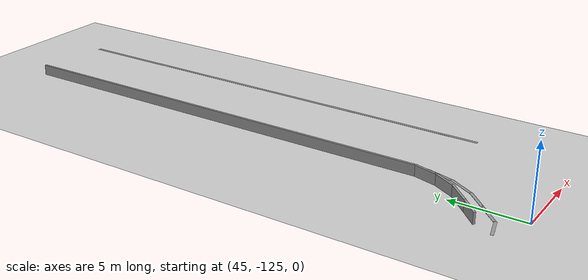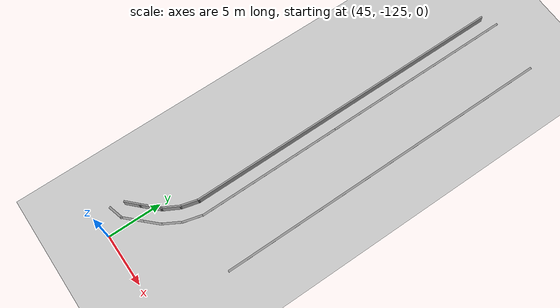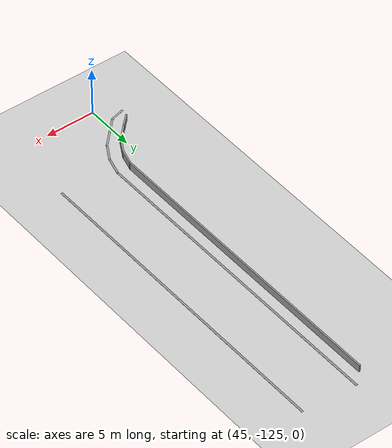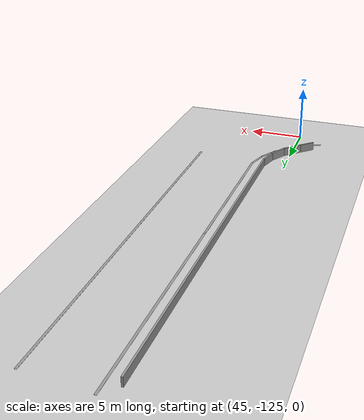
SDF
<sdf version="1.6">
 <world name="default">
  <model name="ground_plane">
   <static>1</static>
   <link name="link">
    <collision name="collision">
     <geometry><plane><normal>0 0 1</normal><size>100 100</size></plane></geometry>
     <surface>
      <contact><collide_bitmask>65535</collide_bitmask></contact>
      <friction><ode><mu>100</mu><mu2>50</mu2></ode></friction>
     </surface>
    </collision>
    <visual name="visual">
     <cast_shadows>0</cast_shadows>
     <geometry><plane><normal>0 0 1</normal><size>100 100</size></plane></geometry>
     <material>
      <script><uri>file://media/materials/scripts/gazebo.material</uri><name>Gazebo/Grey</name></script>
     </material>
    </visual>
   </link>
  </model>
  <model name="GercekDuvarSeritKoyu1">
   <link name="Wall_141">
    <pose>67.1621 -16.2216 0 0 -0 2.33523</pose>
    <inertial>
     <mass>1</mass>
     <inertia><ixx>1</ixx><ixy>0</ixy><ixz>0</ixz><iyy>1</iyy><iyz>0</iyz><izz>1</izz></inertia>
    </inertial>
    <visual name="Wall_141_Visual">
     <pose>0 0 0.375 0 -0 0</pose>
     <geometry><box><size>1.5 0.15 0.75</size></box></geometry>
     <material>
      <script><uri>file://media/materials/scripts/gazebo.material</uri><name>Gazebo/Grey</name></script>
      <ambient>0.5 0.5 0.5 1</ambient>
      <shader type="pixel"><normal_map>__default__</normal_map></shader>
      <diffuse>0.7 0.7 0.7 1</diffuse>
      <specular>0.01 0.01 0.01 1</specular>
      <emissive>0 0 0 1</emissive>
     </material>
     <meta><layer>0</layer></meta>
    </visual>
    <collision name="Wall_141_Collision">
     <pose>0 0 0.375 0 -0 0</pose>
     <geometry><box><size>1.5 0.15 0.75</size></box></geometry>
     <surface>
      <friction>
       <ode><mu>1</mu><mu2>1</mu2><fdir1>0 0 0</fdir1><slip1>0</slip1><slip2>0</slip2></ode>
       <torsional>
        <coefficient>1</coefficient>
        <patch_radius>0</patch_radius>
        <surface_radius>0</surface_radius>
        <use_patch_radius>1</use_patch_radius>
        <ode><slip>0</slip></ode>
       </torsional>
      </friction>
      <bounce><restitution_coefficient>0</restitution_coefficient><threshold>1e+06</threshold></bounce>
      <contact>
       <collide_without_contact>0</collide_without_contact>
       <collide_without_contact_bitmask>1</collide_without_contact_bitmask>
       <collide_bitmask>1</collide_bitmask>
       <ode>
        <soft_cfm>0</soft_cfm>
        <soft_erp>0.2</soft_erp>
        <kp>1e+13</kp>
        <kd>1</kd>
        <max_vel>0.01</max_vel>
        <min_depth>0</min_depth>
       </ode>
       <bullet>
        <split_impulse>1</split_impulse>
        <split_impulse_penetration_threshold>-0.01</split_impulse_penetration_threshold>
        <soft_cfm>0</soft_cfm>
        <soft_erp>0.2</soft_erp>
        <kp>1e+13</kp>
        <kd>1</kd>
       </bullet>
      </contact>
     </surface>
    </collision>
   </link>
   <link name="Wall_142">
    <pose>66.0411 -15.0806 0 0 -0 2.35619</pose>
    <inertial>
     <mass>1</mass>
     <inertia><ixx>1</ixx><ixy>0</ixy><ixz>0</ixz><iyy>1</iyy><iyz>0</iyz><izz>1</izz></inertia>
    </inertial>
    <visual name="Wall_142_Visual">
     <pose>0 0 0.375 0 -0 0</pose>
     <geometry><box><size>2 0.15 0.75</size></box></geometry>
     <material>
      <script><uri>file://media/materials/scripts/gazebo.material</uri><name>Gazebo/Grey</name></script>
      <ambient>0.5 0.5 0.5 1</ambient>
      <shader type="pixel"><normal_map>__default__</normal_map></shader>
      <diffuse>0.7 0.7 0.7 1</diffuse>
      <specular>0.01 0.01 0.01 1</specular>
      <emissive>0 0 0 1</emissive>
     </material>
     <meta><layer>0</layer></meta>
    </visual>
    <collision name="Wall_142_Collision">
     <pose>0 0 0.375 0 -0 0</pose>
     <geometry><box><size>2 0.15 0.75</size></box></geometry>
     <surface>
      <friction>
       <ode><mu>1</mu><mu2>1</mu2><fdir1>0 0 0</fdir1><slip1>0</slip1><slip2>0</slip2></ode>
       <torsional>
        <coefficient>1</coefficient>
        <patch_radius>0</patch_radius>
        <surface_radius>0</surface_radius>
        <use_patch_radius>1</use_patch_radius>
        <ode><slip>0</slip></ode>
       </torsional>
      </friction>
      <bounce><restitution_coefficient>0</restitution_coefficient><threshold>1e+06</threshold></bounce>
      <contact>
       <collide_without_contact>0</collide_without_contact>
       <collide_without_contact_bitmask>1</collide_without_contact_bitmask>
       <collide_bitmask>1</collide_bitmask>
       <ode>
        <soft_cfm>0</soft_cfm>
        <soft_erp>0.2</soft_erp>
        <kp>1e+13</kp>
        <kd>1</kd>
        <max_vel>0.01</max_vel>
        <min_depth>0</min_depth>
       </ode>
       <bullet>
        <split_impulse>1</split_impulse>
        <split_impulse_penetration_threshold>-0.01</split_impulse_penetration_threshold>
        <soft_cfm>0</soft_cfm>
        <soft_erp>0.2</soft_erp>
        <kp>1e+13</kp>
        <kd>1</kd>
       </bullet>
      </contact>
     </surface>
    </collision>
   </link>
   <link name="Wall_143">
    <pose>64.6841 -14.0366 0 0 -0 2.6351</pose>
    <inertial>
     <mass>1</mass>
     <inertia><ixx>1</ixx><ixy>0</ixy><ixz>0</ixz><iyy>1</iyy><iyz>0</iyz><izz>1</izz></inertia>
    </inertial>
    <visual name="Wall_143_Visual">
     <pose>0 0 0.375 0 -0 0</pose>
     <geometry><box><size>1.75815 0.15 0.75</size></box></geometry>
     <material>
      <script><uri>file://media/materials/scripts/gazebo.material</uri><name>Gazebo/Grey</name></script>
      <ambient>0.5 0.5 0.5 1</ambient>
      <shader type="pixel"><normal_map>__default__</normal_map></shader>
      <diffuse>0.7 0.7 0.7 1</diffuse>
      <specular>0.01 0.01 0.01 1</specular>
      <emissive>0 0 0 1</emissive>
     </material>
     <meta><layer>0</layer></meta>
    </visual>
    <collision name="Wall_143_Collision">
     <pose>0 0 0.375 0 -0 0</pose>
     <geometry><box><size>1.75815 0.15 0.75</size></box></geometry>
     <surface>
      <friction>
       <ode><mu>1</mu><mu2>1</mu2><fdir1>0 0 0</fdir1><slip1>0</slip1><slip2>0</slip2></ode>
       <torsional>
        <coefficient>1</coefficient>
        <patch_radius>0</patch_radius>
        <surface_radius>0</surface_radius>
        <use_patch_radius>1</use_patch_radius>
        <ode><slip>0</slip></ode>
       </torsional>
      </friction>
      <bounce><restitution_coefficient>0</restitution_coefficient><threshold>1e+06</threshold></bounce>
      <contact>
       <collide_without_contact>0</collide_without_contact>
       <collide_without_contact_bitmask>1</collide_without_contact_bitmask>
       <collide_bitmask>1</collide_bitmask>
       <ode>
        <soft_cfm>0</soft_cfm>
        <soft_erp>0.2</soft_erp>
        <kp>1e+13</kp>
        <kd>1</kd>
        <max_vel>0.01</max_vel>
        <min_depth>0</min_depth>
       </ode>
       <bullet>
        <split_impulse>1</split_impulse>
        <split_impulse_penetration_threshold>-0.01</split_impulse_penetration_threshold>
        <soft_cfm>0</soft_cfm>
        <soft_erp>0.2</soft_erp>
        <kp>1e+13</kp>
        <kd>1</kd>
       </bullet>
      </contact>
     </surface>
    </collision>
   </link>
   <link name="Wall_144">
    <pose>63.2081 -13.4396 0 0 -0 2.87994</pose>
    <inertial>
     <mass>1</mass>
     <inertia><ixx>1</ixx><ixy>0</ixy><ixz>0</ixz><iyy>1</iyy><iyz>0</iyz><izz>1</izz></inertia>
    </inertial>
    <visual name="Wall_144_Visual">
     <pose>0 0 0.375 0 -0 0</pose>
     <geometry><box><size>1.75 0.15 0.75</size></box></geometry>
     <material>
      <script><uri>file://media/materials/scripts/gazebo.material</uri><name>Gazebo/Grey</name></script>
      <ambient>0.5 0.5 0.5 1</ambient>
      <shader type="pixel"><normal_map>__default__</normal_map></shader>
      <diffuse>0.7 0.7 0.7 1</diffuse>
      <specular>0.01 0.01 0.01 1</specular>
      <emissive>0 0 0 1</emissive>
     </material>
     <meta><layer>0</layer></meta>
    </visual>
    <collision name="Wall_144_Collision">
     <pose>0 0 0.375 0 -0 0</pose>
     <geometry><box><size>1.75 0.15 0.75</size></box></geometry>
     <surface>
      <friction>
       <ode><mu>1</mu><mu2>1</mu2><fdir1>0 0 0</fdir1><slip1>0</slip1><slip2>0</slip2></ode>
       <torsional>
        <coefficient>1</coefficient>
        <patch_radius>0</patch_radius>
        <surface_radius>0</surface_radius>
        <use_patch_radius>1</use_patch_radius>
        <ode><slip>0</slip></ode>
       </torsional>
      </friction>
      <bounce><restitution_coefficient>0</restitution_coefficient><threshold>1e+06</threshold></bounce>
      <contact>
       <collide_without_contact>0</collide_without_contact>
       <collide_without_contact_bitmask>1</collide_without_contact_bitmask>
       <collide_bitmask>1</collide_bitmask>
       <ode>
        <soft_cfm>0</soft_cfm>
        <soft_erp>0.2</soft_erp>
        <kp>1e+13</kp>
        <kd>1</kd>
        <max_vel>0.01</max_vel>
        <min_depth>0</min_depth>
       </ode>
       <bullet>
        <split_impulse>1</split_impulse>
        <split_impulse_penetration_threshold>-0.01</split_impulse_penetration_threshold>
        <soft_cfm>0</soft_cfm>
        <soft_erp>0.2</soft_erp>
        <kp>1e+13</kp>
        <kd>1</kd>
       </bullet>
      </contact>
     </surface>
    </collision>
   </link>
   <link name="Wall_145">
    <pose>47.0101 -13.2326 0 0 -0 3.14159</pose>
    <inertial>
     <mass>1</mass>
     <inertia><ixx>1</ixx><ixy>0</ixy><ixz>0</ixz><iyy>1</iyy><iyz>0</iyz><izz>1</izz></inertia>
    </inertial>
    <visual name="Wall_145_Visual">
     <pose>0 0 0.375 0 -0 0</pose>
     <geometry><box><size>31 0.15 0.75</size></box></geometry>
     <material>
      <script><uri>file://media/materials/scripts/gazebo.material</uri><name>Gazebo/Grey</name></script>
      <ambient>0.5 0.5 0.5 1</ambient>
      <shader type="pixel"><normal_map>__default__</normal_map></shader>
      <diffuse>0.7 0.7 0.7 1</diffuse>
      <specular>0.01 0.01 0.01 1</specular>
      <emissive>0 0 0 1</emissive>
     </material>
     <meta><layer>0</layer></meta>
    </visual>
    <collision name="Wall_145_Collision">
     <pose>0 0 0.375 0 -0 0</pose>
     <geometry><box><size>31 0.15 0.75</size></box></geometry>
     <surface>
      <friction>
       <ode><mu>1</mu><mu2>1</mu2><fdir1>0 0 0</fdir1><slip1>0</slip1><slip2>0</slip2></ode>
       <torsional>
        <coefficient>1</coefficient>
        <patch_radius>0</patch_radius>
        <surface_radius>0</surface_radius>
        <use_patch_radius>1</use_patch_radius>
        <ode><slip>0</slip></ode>
       </torsional>
      </friction>
      <bounce><restitution_coefficient>0</restitution_coefficient><threshold>1e+06</threshold></bounce>
      <contact>
       <collide_without_contact>0</collide_without_contact>
       <collide_without_contact_bitmask>1</collide_without_contact_bitmask>
       <collide_bitmask>1</collide_bitmask>
       <ode>
        <soft_cfm>0</soft_cfm>
        <soft_erp>0.2</soft_erp>
        <kp>1e+13</kp>
        <kd>1</kd>
        <max_vel>0.01</max_vel>
        <min_depth>0</min_depth>
       </ode>
       <bullet>
        <split_impulse>1</split_impulse>
        <split_impulse_penetration_threshold>-0.01</split_impulse_penetration_threshold>
        <soft_cfm>0</soft_cfm>
        <soft_erp>0.2</soft_erp>
        <kp>1e+13</kp>
        <kd>1</kd>
       </bullet>
      </contact>
     </surface>
    </collision>
   </link>
   <link name="Wall_441">
    <pose>68.7556 -16.5646 0 0 -0 1.83231</pose>
    <visual name="Wall_441_Visual">
     <pose>0 0 0.005 0 -0 0</pose>
     <geometry><box><size>1.54945 0.2 0.01</size></box></geometry>
     <material>
      <script><uri>file://media/materials/scripts/gazebo.material</uri><name>Gazebo/Grey</name></script>
      <ambient>1 1 1 1</ambient>
      <shader type="pixel"/>
     </material>
     <meta><layer>0</layer></meta>
    </visual>
    <collision name="Wall_441_Collision">
     <pose>0 0 0.005 0 -0 0</pose>
     <geometry><box><size>1.54945 0.2 0.01</size></box></geometry>
     <surface>
      <friction>
       <ode><mu>1</mu><mu2>1</mu2><fdir1>0 0 0</fdir1><slip1>0</slip1><slip2>0</slip2></ode>
       <torsional>
        <coefficient>1</coefficient>
        <patch_radius>0</patch_radius>
        <surface_radius>0</surface_radius>
        <use_patch_radius>1</use_patch_radius>
        <ode><slip>0</slip></ode>
       </torsional>
      </friction>
      <bounce><restitution_coefficient>0</restitution_coefficient><threshold>1e+06</threshold></bounce>
      <contact>
       <collide_without_contact>0</collide_without_contact>
       <collide_without_contact_bitmask>1</collide_without_contact_bitmask>
       <collide_bitmask>1</collide_bitmask>
       <ode>
        <soft_cfm>0</soft_cfm>
        <soft_erp>0.2</soft_erp>
        <kp>1e+13</kp>
        <kd>1</kd>
        <max_vel>0.01</max_vel>
        <min_depth>0</min_depth>
       </ode>
       <bullet>
        <split_impulse>1</split_impulse>
        <split_impulse_penetration_threshold>-0.01</split_impulse_penetration_threshold>
        <soft_cfm>0</soft_cfm>
        <soft_erp>0.2</soft_erp>
        <kp>1e+13</kp>
        <kd>1</kd>
       </bullet>
      </contact>
     </surface>
    </collision>
   </link>
   <link name="Wall_442">
    <pose>67.9271 -15.2586 0 0 -0 2.35619</pose>
    <visual name="Wall_442_Visual">
     <pose>0 0 0.005 0 -0 0</pose>
     <geometry><box><size>2.0497 0.2 0.01</size></box></geometry>
     <material>
      <script><uri>file://media/materials/scripts/gazebo.material</uri><name>Gazebo/Grey</name></script>
      <ambient>1 1 1 1</ambient>
      <shader type="pixel"/>
     </material>
     <meta><layer>0</layer></meta>
    </visual>
    <collision name="Wall_442_Collision">
     <pose>0 0 0.005 0 -0 0</pose>
     <geometry><box><size>2.0497 0.2 0.01</size></box></geometry>
     <surface>
      <friction>
       <ode><mu>1</mu><mu2>1</mu2><fdir1>0 0 0</fdir1><slip1>0</slip1><slip2>0</slip2></ode>
       <torsional>
        <coefficient>1</coefficient>
        <patch_radius>0</patch_radius>
        <surface_radius>0</surface_radius>
        <use_patch_radius>1</use_patch_radius>
        <ode><slip>0</slip></ode>
       </torsional>
      </friction>
      <bounce><restitution_coefficient>0</restitution_coefficient><threshold>1e+06</threshold></bounce>
      <contact>
       <collide_without_contact>0</collide_without_contact>
       <collide_without_contact_bitmask>1</collide_without_contact_bitmask>
       <collide_bitmask>1</collide_bitmask>
       <ode>
        <soft_cfm>0</soft_cfm>
        <soft_erp>0.2</soft_erp>
        <kp>1e+13</kp>
        <kd>1</kd>
        <max_vel>0.01</max_vel>
        <min_depth>0</min_depth>
       </ode>
       <bullet>
        <split_impulse>1</split_impulse>
        <split_impulse_penetration_threshold>-0.01</split_impulse_penetration_threshold>
        <soft_cfm>0</soft_cfm>
        <soft_erp>0.2</soft_erp>
        <kp>1e+13</kp>
        <kd>1</kd>
       </bullet>
      </contact>
     </surface>
    </collision>
   </link>
   <link name="Wall_443">
    <pose>66.7071 -14.0391 0 0 -0 2.35664</pose>
    <visual name="Wall_443_Visual">
     <pose>0 0 0.005 0 -0 0</pose>
     <geometry><box><size>1.79991 0.2 0.01</size></box></geometry>
     <material>
      <script><uri>file://media/materials/scripts/gazebo.material</uri><name>Gazebo/Grey</name></script>
      <ambient>1 1 1 1</ambient>
      <shader type="pixel"/>
     </material>
     <meta><layer>0</layer></meta>
    </visual>
    <collision name="Wall_443_Collision">
     <pose>0 0 0.005 0 -0 0</pose>
     <geometry><box><size>1.79991 0.2 0.01</size></box></geometry>
     <surface>
      <friction>
       <ode><mu>1</mu><mu2>1</mu2><fdir1>0 0 0</fdir1><slip1>0</slip1><slip2>0</slip2></ode>
       <torsional>
        <coefficient>1</coefficient>
        <patch_radius>0</patch_radius>
        <surface_radius>0</surface_radius>
        <use_patch_radius>1</use_patch_radius>
        <ode><slip>0</slip></ode>
       </torsional>
      </friction>
      <bounce><restitution_coefficient>0</restitution_coefficient><threshold>1e+06</threshold></bounce>
      <contact>
       <collide_without_contact>0</collide_without_contact>
       <collide_without_contact_bitmask>1</collide_without_contact_bitmask>
       <collide_bitmask>1</collide_bitmask>
       <ode>
        <soft_cfm>0</soft_cfm>
        <soft_erp>0.2</soft_erp>
        <kp>1e+13</kp>
        <kd>1</kd>
        <max_vel>0.01</max_vel>
        <min_depth>0</min_depth>
       </ode>
       <bullet>
        <split_impulse>1</split_impulse>
        <split_impulse_penetration_threshold>-0.01</split_impulse_penetration_threshold>
        <soft_cfm>0</soft_cfm>
        <soft_erp>0.2</soft_erp>
        <kp>1e+13</kp>
        <kd>1</kd>
       </bullet>
      </contact>
     </surface>
    </collision>
   </link>
   <link name="Wall_444">
    <pose>65.3401 -13.0111 0 0 -0 2.61795</pose>
    <visual name="Wall_444_Visual">
     <pose>0 0 0.005 0 -0 0</pose>
     <geometry><box><size>2.04965 0.2 0.01</size></box></geometry>
     <material>
      <script><uri>file://media/materials/scripts/gazebo.material</uri><name>Gazebo/Grey</name></script>
      <ambient>1 1 1 1</ambient>
      <shader type="pixel"/>
     </material>
     <meta><layer>0</layer></meta>
    </visual>
    <collision name="Wall_444_Collision">
     <pose>0 0 0.005 0 -0 0</pose>
     <geometry><box><size>2.04965 0.2 0.01</size></box></geometry>
     <surface>
      <friction>
       <ode><mu>1</mu><mu2>1</mu2><fdir1>0 0 0</fdir1><slip1>0</slip1><slip2>0</slip2></ode>
       <torsional>
        <coefficient>1</coefficient>
        <patch_radius>0</patch_radius>
        <surface_radius>0</surface_radius>
        <use_patch_radius>1</use_patch_radius>
        <ode><slip>0</slip></ode>
       </torsional>
      </friction>
      <bounce><restitution_coefficient>0</restitution_coefficient><threshold>1e+06</threshold></bounce>
      <contact>
       <collide_without_contact>0</collide_without_contact>
       <collide_without_contact_bitmask>1</collide_without_contact_bitmask>
       <collide_bitmask>1</collide_bitmask>
       <ode>
        <soft_cfm>0</soft_cfm>
        <soft_erp>0.2</soft_erp>
        <kp>1e+13</kp>
        <kd>1</kd>
        <max_vel>0.01</max_vel>
        <min_depth>0</min_depth>
       </ode>
       <bullet>
        <split_impulse>1</split_impulse>
        <split_impulse_penetration_threshold>-0.01</split_impulse_penetration_threshold>
        <soft_cfm>0</soft_cfm>
        <soft_erp>0.2</soft_erp>
        <kp>1e+13</kp>
        <kd>1</kd>
       </bullet>
      </contact>
     </surface>
    </collision>
   </link>
   <link name="Wall_445">
    <pose>63.6456 -12.3091 0 0 -0 2.8797</pose>
    <visual name="Wall_445_Visual">
     <pose>0 0 0.005 0 -0 0</pose>
     <geometry><box><size>2.04974 0.2 0.01</size></box></geometry>
     <material>
      <script><uri>file://media/materials/scripts/gazebo.material</uri><name>Gazebo/Grey</name></script>
      <ambient>1 1 1 1</ambient>
      <shader type="pixel"/>
     </material>
     <meta><layer>0</layer></meta>
    </visual>
    <collision name="Wall_445_Collision">
     <pose>0 0 0.005 0 -0 0</pose>
     <geometry><box><size>2.04974 0.2 0.01</size></box></geometry>
     <surface>
      <friction>
       <ode><mu>1</mu><mu2>1</mu2><fdir1>0 0 0</fdir1><slip1>0</slip1><slip2>0</slip2></ode>
       <torsional>
        <coefficient>1</coefficient>
        <patch_radius>0</patch_radius>
        <surface_radius>0</surface_radius>
        <use_patch_radius>1</use_patch_radius>
        <ode><slip>0</slip></ode>
       </torsional>
      </friction>
      <bounce><restitution_coefficient>0</restitution_coefficient><threshold>1e+06</threshold></bounce>
      <contact>
       <collide_without_contact>0</collide_without_contact>
       <collide_without_contact_bitmask>1</collide_without_contact_bitmask>
       <collide_bitmask>1</collide_bitmask>
       <ode>
        <soft_cfm>0</soft_cfm>
        <soft_erp>0.2</soft_erp>
        <kp>1e+13</kp>
        <kd>1</kd>
        <max_vel>0.01</max_vel>
        <min_depth>0</min_depth>
       </ode>
       <bullet>
        <split_impulse>1</split_impulse>
        <split_impulse_penetration_threshold>-0.01</split_impulse_penetration_threshold>
        <soft_cfm>0</soft_cfm>
        <soft_erp>0.2</soft_erp>
        <kp>1e+13</kp>
        <kd>1</kd>
       </bullet>
      </contact>
     </surface>
    </collision>
   </link>
   <link name="Wall_446">
    <pose>55.9521 -12.0696 0 0 -0 3.14159</pose>
    <visual name="Wall_446_Visual">
     <pose>0 0 0.005 0 -0 0</pose>
     <geometry><box><size>13.7997 0.2 0.01</size></box></geometry>
     <material>
      <script><uri>file://media/materials/scripts/gazebo.material</uri><name>Gazebo/Grey</name></script>
      <ambient>1 1 1 1</ambient>
      <shader type="pixel"/>
     </material>
     <meta><layer>0</layer></meta>
    </visual>
    <collision name="Wall_446_Collision">
     <pose>0 0 0.005 0 -0 0</pose>
     <geometry><box><size>13.7997 0.2 0.01</size></box></geometry>
     <surface>
      <friction>
       <ode><mu>1</mu><mu2>1</mu2><fdir1>0 0 0</fdir1><slip1>0</slip1><slip2>0</slip2></ode>
       <torsional>
        <coefficient>1</coefficient>
        <patch_radius>0</patch_radius>
        <surface_radius>0</surface_radius>
        <use_patch_radius>1</use_patch_radius>
        <ode><slip>0</slip></ode>
       </torsional>
      </friction>
      <bounce><restitution_coefficient>0</restitution_coefficient><threshold>1e+06</threshold></bounce>
      <contact>
       <collide_without_contact>0</collide_without_contact>
       <collide_without_contact_bitmask>1</collide_without_contact_bitmask>
       <collide_bitmask>1</collide_bitmask>
       <ode>
        <soft_cfm>0</soft_cfm>
        <soft_erp>0.2</soft_erp>
        <kp>1e+13</kp>
        <kd>1</kd>
        <max_vel>0.01</max_vel>
        <min_depth>0</min_depth>
       </ode>
       <bullet>
        <split_impulse>1</split_impulse>
        <split_impulse_penetration_threshold>-0.01</split_impulse_penetration_threshold>
        <soft_cfm>0</soft_cfm>
        <soft_erp>0.2</soft_erp>
        <kp>1e+13</kp>
        <kd>1</kd>
       </bullet>
      </contact>
     </surface>
    </collision>
   </link>
   <link name="Wall_448">
    <pose>39.8521 -12.0696 0 0 -0 3.14159</pose>
    <visual name="Wall_448_Visual">
     <pose>0 0 0.005 0 -0 0</pose>
     <geometry><box><size>18.7997 0.2 0.01</size></box></geometry>
     <material>
      <script><uri>file://media/materials/scripts/gazebo.material</uri><name>Gazebo/Grey</name></script>
      <ambient>1 1 1 1</ambient>
      <shader type="pixel"/>
     </material>
     <meta><layer>0</layer></meta>
    </visual>
    <collision name="Wall_448_Collision">
     <pose>0 0 0.005 0 -0 0</pose>
     <geometry><box><size>18.7997 0.2 0.01</size></box></geometry>
     <surface>
      <friction>
       <ode><mu>1</mu><mu2>1</mu2><fdir1>0 0 0</fdir1><slip1>0</slip1><slip2>0</slip2></ode>
       <torsional>
        <coefficient>1</coefficient>
        <patch_radius>0</patch_radius>
        <surface_radius>0</surface_radius>
        <use_patch_radius>1</use_patch_radius>
        <ode><slip>0</slip></ode>
       </torsional>
      </friction>
      <bounce><restitution_coefficient>0</restitution_coefficient><threshold>1e+06</threshold></bounce>
      <contact>
       <collide_without_contact>0</collide_without_contact>
       <collide_without_contact_bitmask>1</collide_without_contact_bitmask>
       <collide_bitmask>1</collide_bitmask>
       <ode>
        <soft_cfm>0</soft_cfm>
        <soft_erp>0.2</soft_erp>
        <kp>1e+13</kp>
        <kd>1</kd>
        <max_vel>0.01</max_vel>
        <min_depth>0</min_depth>
       </ode>
       <bullet>
        <split_impulse>1</split_impulse>
        <split_impulse_penetration_threshold>-0.01</split_impulse_penetration_threshold>
        <soft_cfm>0</soft_cfm>
        <soft_erp>0.2</soft_erp>
        <kp>1e+13</kp>
        <kd>1</kd>
       </bullet>
      </contact>
     </surface>
    </collision>
   </link>
   <link name="Wall_480">
    <pose>47.2801 -6.72559 0 0 -0 0</pose>
    <visual name="Wall_480_Visual">
     <pose>0 0 0.005 0 -0 0</pose>
     <geometry><box><size>32.8001 0.2 0.01</size></box></geometry>
     <material>
      <script><uri>file://media/materials/scripts/gazebo.material</uri><name>Gazebo/Grey</name></script>
      <ambient>1 1 1 1</ambient>
      <shader type="pixel"/>
     </material>
     <meta><layer>0</layer></meta>
    </visual>
    <collision name="Wall_480_Collision">
     <pose>0 0 0.005 0 -0 0</pose>
     <geometry><box><size>32.8001 0.2 0.01</size></box></geometry>
     <surface>
      <friction>
       <ode><mu>1</mu><mu2>1</mu2><fdir1>0 0 0</fdir1><slip1>0</slip1><slip2>0</slip2></ode>
       <torsional>
        <coefficient>1</coefficient>
        <patch_radius>0</patch_radius>
        <surface_radius>0</surface_radius>
        <use_patch_radius>1</use_patch_radius>
        <ode><slip>0</slip></ode>
       </torsional>
      </friction>
      <bounce><restitution_coefficient>0</restitution_coefficient><threshold>1e+06</threshold></bounce>
      <contact>
       <collide_without_contact>0</collide_without_contact>
       <collide_without_contact_bitmask>1</collide_without_contact_bitmask>
       <collide_bitmask>1</collide_bitmask>
       <ode>
        <soft_cfm>0</soft_cfm>
        <soft_erp>0.2</soft_erp>
        <kp>1e+13</kp>
        <kd>1</kd>
        <max_vel>0.01</max_vel>
        <min_depth>0</min_depth>
       </ode>
       <bullet>
        <split_impulse>1</split_impulse>
        <split_impulse_penetration_threshold>-0.01</split_impulse_penetration_threshold>
        <soft_cfm>0</soft_cfm>
        <soft_erp>0.2</soft_erp>
        <kp>1e+13</kp>
        <kd>1</kd>
       </bullet>
      </contact>
     </surface>
    </collision>
   </link>
   <static>1</static>
   <pose>59.9324 -54.7034 -0 0 0 -1.5695</pose>
  </model>
 </world>
</sdf>
